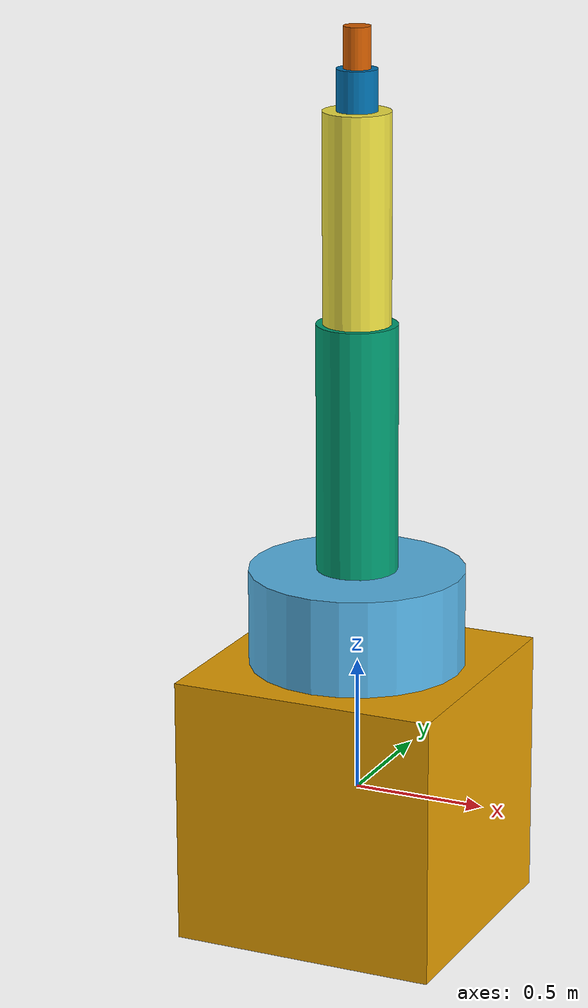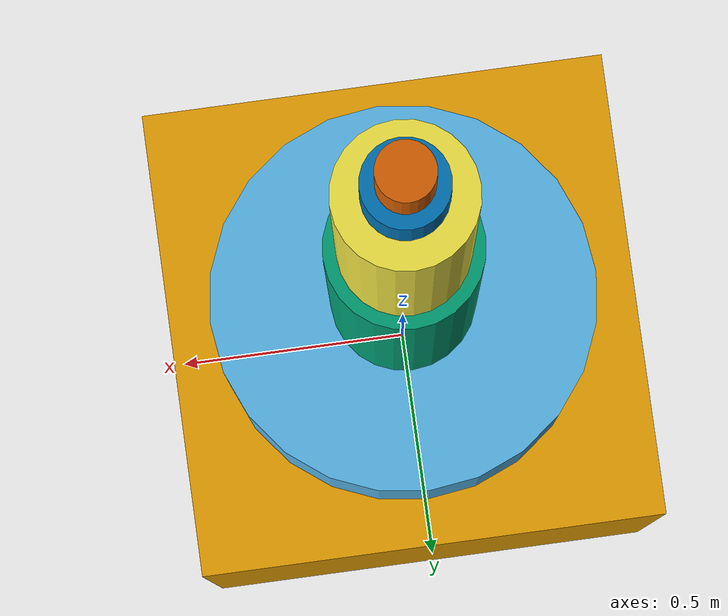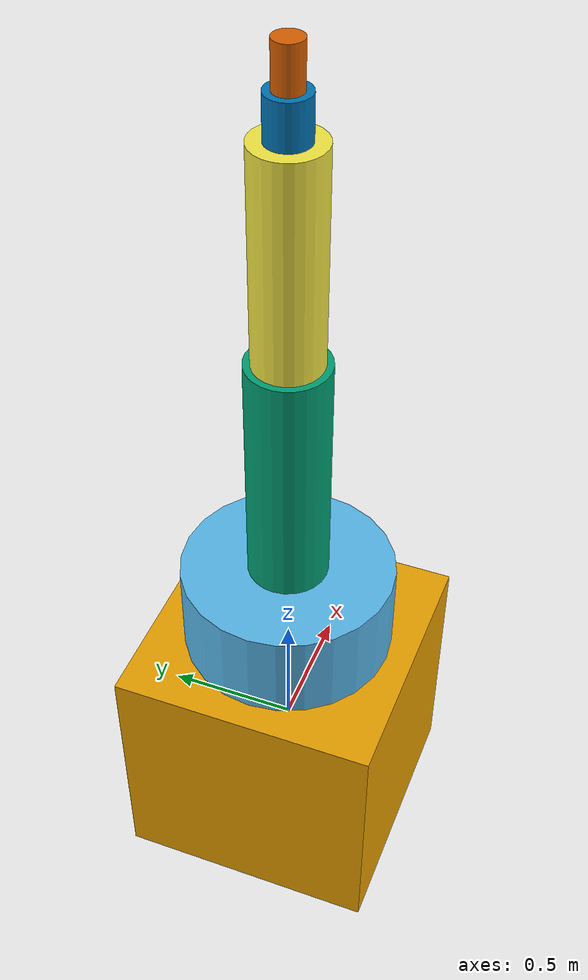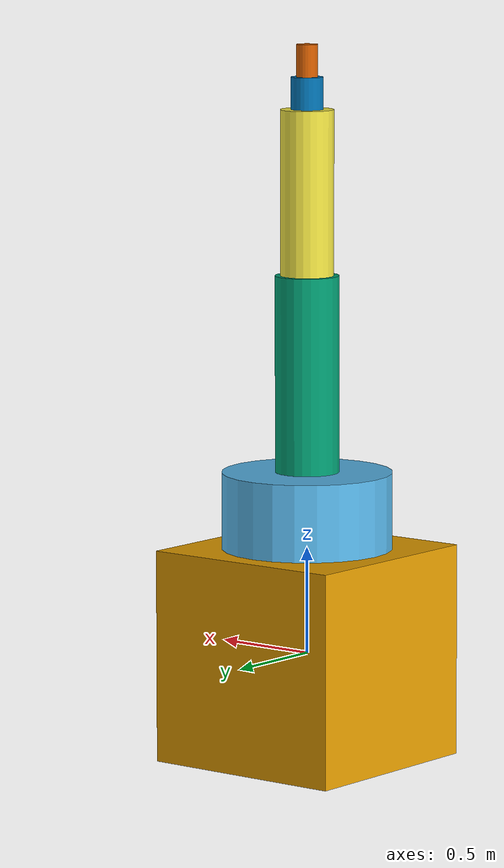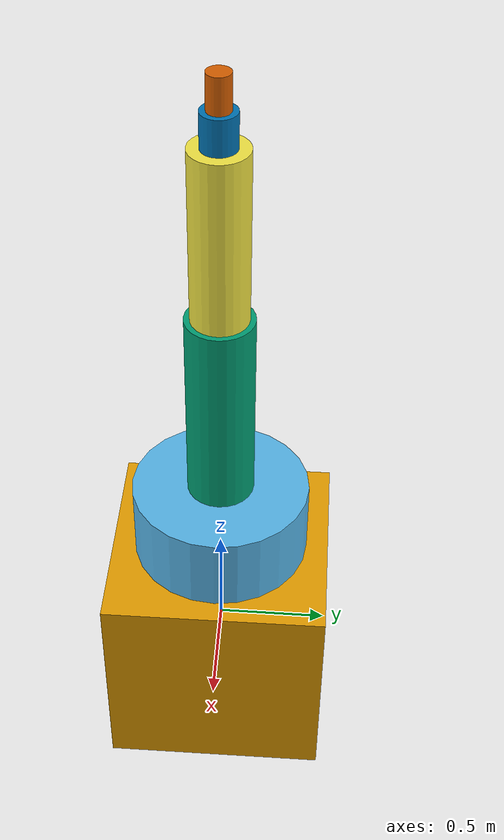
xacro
<?xml version="1.0"?>

<robot xmlns:xacro="http://www.ros.org/wiki/xacro" name="robot">

    <xacro:property name="joint_lower_limit" value="-${1.57}" />
	<xacro:property name="joint_upper_limit" value="${1.57}" />
	<xacro:property name="joint_effort" value="6.0" />
	<xacro:property name="joint_velocity" value="0.524" />

    <link name="base_link">
        <visual>
            <origin xyz="0.0 0.0 0.0" rpy="0.0 0.0 0.0"/>
            <geometry>
                <box size="1 1 1"/>
            </geometry>
        </visual>
        <collision>
            <origin xyz="0.0 0.0 0" rpy="0.0 0.0 0.0"/>
            <geometry>
                <box size="1 1 1"/>
            </geometry>
        </collision>
    </link>

    <link name="base_to_joint1">
        <visual>
            <origin rpy="0 0 0.0" xyz="0 0 0.18"/>
            <geometry>
                <cylinder radius="0.4" length="0.36"/>
            </geometry>
        </visual>
        <collision>
            <origin rpy="0 0 0" xyz="0 0 0.18"/>
            <geometry>
                <cylinder radius="0.4" length="0.36"/>
            </geometry>
        </collision>
        <inertial>
            <mass value="1"/>
            <inertia
                ixx="0.06" ixy="0.0" ixz="0.0"
                iyy="0.06" iyz="0.0"
                izz="0.25"/>
        </inertial>
    </link>

    <joint name="joint1" type="revolute">
        <origin rpy="0 0 0" xyz="0 0 0.5"/>
        <parent link="base_link"/>
        <child link="base_to_joint1"/>
        <axis xyz="0 0 1"/>
        <limit lower="-1.57" upper="1.57" effort="1000.0" velocity="0.5" />
    </joint>

    <transmission name="joint1_transmission">
        <type>transmission_interface/SimpleTransmission</type>
        <joint name="joint1">
            <hardwareInterface>hardware_interface/EffortJointInterface</hardwareInterface>
        </joint>
        <actuator name="joint_motor1">
            <hardwareInterface>hardware_interface/EffortJointInterface</hardwareInterface>
            <mechanicalReduction>1</mechanicalReduction>
        </actuator>
    </transmission>

    <link name="joint1_to_joint2">
        <visual>
            <origin rpy="0 0 0.0" xyz="0 0 0.46"/>
            <geometry>
                <cylinder radius="0.15" length="0.92"/>
            </geometry>
        </visual>
        <collision>
            <origin rpy="0 0 0" xyz="0 0 0.46"/>
            <geometry>
                <cylinder radius="0.15" length="0.92"/>
            </geometry>
        </collision>
        <inertial>
            <mass value="57.906"/>
            <inertia
                ixx="12.679" ixy="0.0" ixz="0.0"
                iyy="12.679" iyz="0.0"
                izz="0.651"/>
        </inertial>
    </link>

    <joint name="joint2" type="revolute">
        <origin rpy="0 0 0" xyz="0 0 0.36"/>
        <parent link="base_to_joint1"/>
        <child link="joint1_to_joint2"/>
        <axis xyz="0 1 0"/>
        <limit lower="-1.57" upper="1.57" effort="1000.0" velocity="0.5" />
    </joint>

    <transmission name="joint2_transmission">
        <type>transmission_interface/SimpleTransmission</type>
        <joint name="joint2">
            <hardwareInterface>hardware_interface/EffortJointInterface</hardwareInterface>
        </joint>
        <actuator name="joint_motor2">
            <hardwareInterface>hardware_interface/EffortJointInterface</hardwareInterface>
            <mechanicalReduction>1</mechanicalReduction>
        </actuator>
    </transmission>

    <link name="joint2_to_joint3">
        <visual>
            <origin rpy="0 0 0.0" xyz="0 0 0.385"/>
            <geometry>
                <cylinder radius="0.125" length="0.77"/>
            </geometry>
        </visual>
        <collision>
            <origin rpy="0 0 0" xyz="0 0 0.385"/>
            <geometry>
                <cylinder radius="0.125" length="0.77"/>
            </geometry>
        </collision>
        <inertial>
            <mass value="57.906"/>
            <inertia
                ixx="12.679" ixy="0.0" ixz="0.0"
                iyy="12.679" iyz="0.0"
                izz="0.651"/>
        </inertial>
    </link>

    <joint name="joint3" type="revolute">
        <origin rpy="0 0 0" xyz="0 0 0.92"/>
        <parent link="joint1_to_joint2"/>
        <child link="joint2_to_joint3"/>
        <axis xyz="0 1 0"/>
        <limit lower="-1.57" upper="1.57" effort="1000.0" velocity="0.5" />
    </joint>

    <transmission name="joint3_transmission">
        <type>transmission_interface/SimpleTransmission</type>
        <joint name="joint3">
            <hardwareInterface>hardware_interface/EffortJointInterface</hardwareInterface>
        </joint>
        <actuator name="joint_motor3">
            <hardwareInterface>hardware_interface/EffortJointInterface</hardwareInterface>
            <mechanicalReduction>1</mechanicalReduction>
        </actuator>

    </transmission>

    <link name="joint3_to_joint4">
        <visual>
            <origin rpy="0 0 0.0" xyz="0 0 0.075"/>
            <geometry>
                <cylinder radius="0.075" length="0.15"/>
            </geometry>
        </visual>
        <collision>
            <origin rpy="0 0 0" xyz="0 0 0.075"/>
            <geometry>
                <cylinder radius="0.075" length="0.15"/>
            </geometry>
        </collision>
        <inertial>
            <mass value="57.906"/>
            <inertia
                ixx="12.679" ixy="0.0" ixz="0.0"
                iyy="12.679" iyz="0.0"
                izz="0.651"/>
        </inertial>
    </link>

    <joint name="joint4" type="revolute">
        <origin rpy="0 0 0" xyz="0 0 0.77"/>
        <parent link="joint2_to_joint3"/>
        <child link="joint3_to_joint4"/>
        <axis xyz="0 1 0"/>
        <limit lower="-1.57" upper="1.57" effort="1000.0" velocity="0.5" />
    </joint>

    <transmission name="joint4_transmission">
        <type>transmission_interface/SimpleTransmission</type>
        <joint name="joint4">
            <hardwareInterface>hardware_interface/EffortJointInterface</hardwareInterface>
        </joint>
        <actuator name="joint_motor4">
            <hardwareInterface>hardware_interface/EffortJointInterface</hardwareInterface>
            <mechanicalReduction>1</mechanicalReduction>
        </actuator>
    </transmission>

    <link name="joint4_to_tool">
        <visual>
            <origin rpy="0 0 0.0" xyz="0 0 0.075"/>
            <geometry>
                <cylinder radius="0.05" length="0.15"/>
            </geometry>
        </visual>
        <collision>
            <origin rpy="0 0 0" xyz="0 0 0.075"/>
            <geometry>
                <cylinder radius="0.05" length="0.15"/>
            </geometry>
        </collision>
        <inertial>
            <mass value="57.906"/>
            <inertia
                ixx="12.679" ixy="0.0" ixz="0.0"
                iyy="12.679" iyz="0.0"
                izz="0.651"/>
        </inertial>
    </link>

    <joint name="tool" type="revolute">
        <origin rpy="0 0 0" xyz="0 0 0.15"/>
        <parent link="joint3_to_joint4"/>
        <child link="joint4_to_tool"/>
        <axis xyz="0 1 0"/>
        <limit lower="-1.57" upper="1.57" effort="1000.0" velocity="0.5" />
    </joint>

    <transmission name="tool_transmission">
        <type>transmission_interface/SimpleTransmission</type>
        <joint name="tool">
            <hardwareInterface>hardware_interface/EffortJointInterface</hardwareInterface>
        </joint>
        <actuator name="tool_motor">
            <hardwareInterface>hardware_interface/EffortJointInterface</hardwareInterface>
            <mechanicalReduction>1</mechanicalReduction>
        </actuator>
    </transmission>

    <!-- Add ROS plugin so we can interact with our robot -->
    <gazebo>
        <plugin name="gazebo_ros_control" filename="libgazebo_ros_control.so">
            <robotNamespace>/</robotNamespace>
        </plugin>
    </gazebo>

</robot>
